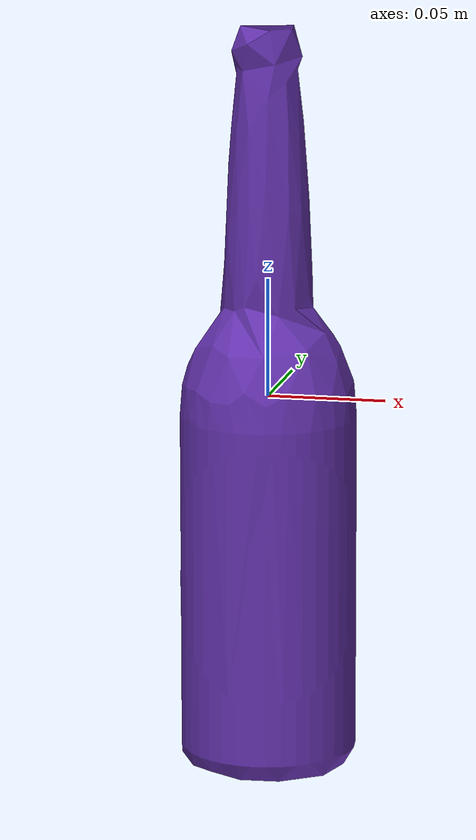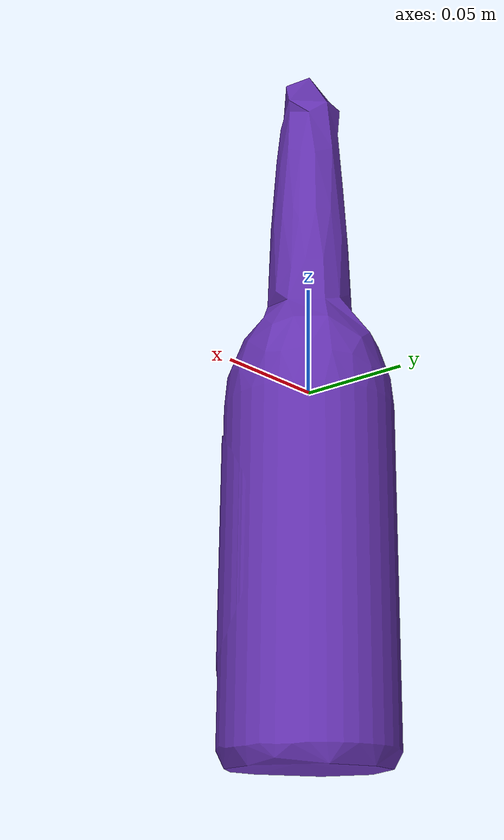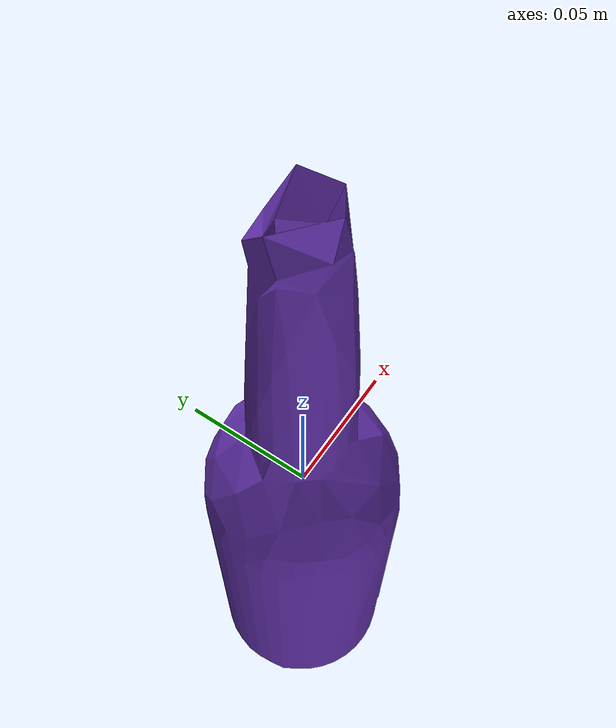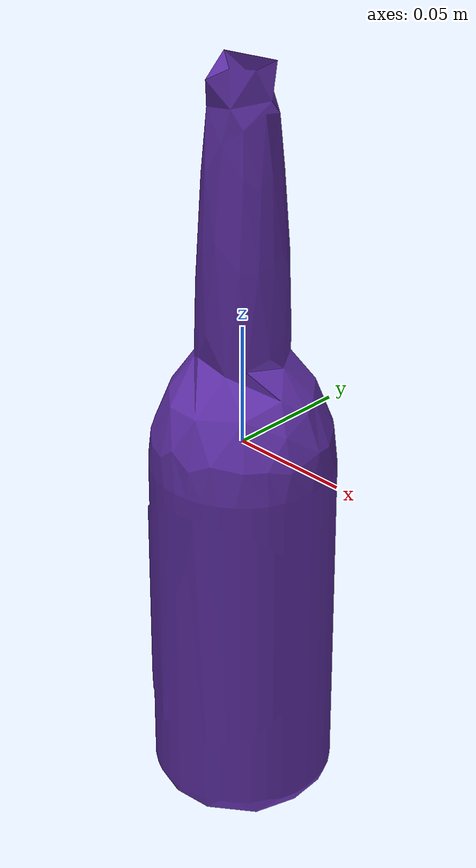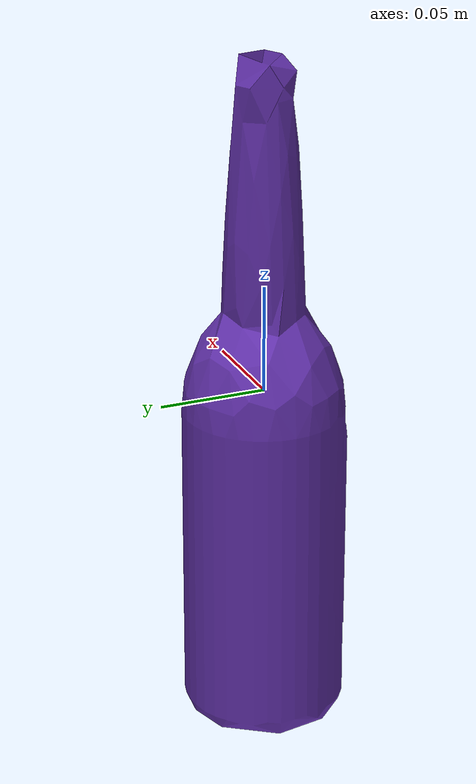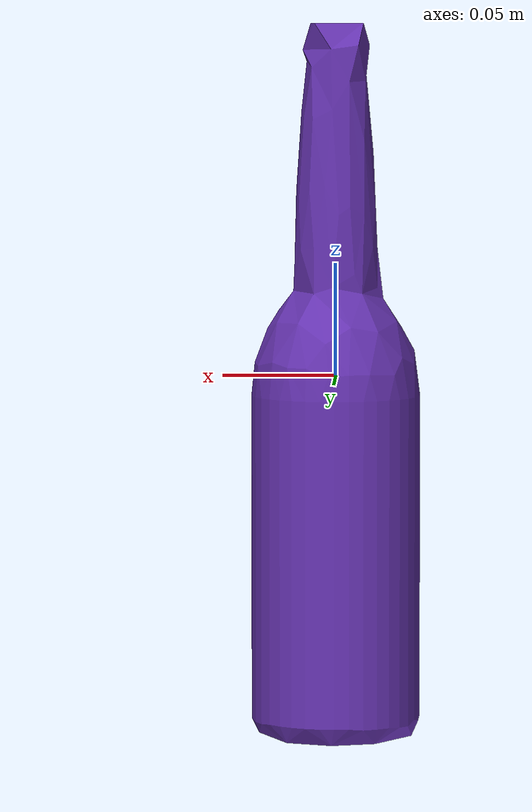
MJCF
<mujoco model="top_watertight_tiny">
  <default>
    <default group="2" type="mesh" contype="0" conaffinity="0">
      <geom group="2" type="mesh" contype="0" conaffinity="0"/>
    </default>
    <default group="3" type="mesh">
      <geom group="3" type="mesh"/>
    </default>
  </default>
  <asset>
    <mesh file="top_watertight_tiny.obj"/>
    <mesh file="top_watertight_tiny_collision_0.obj"/>
    <mesh file="top_watertight_tiny_collision_1.obj"/>
    <mesh file="top_watertight_tiny_collision_2.obj"/>
    <mesh file="top_watertight_tiny_collision_3.obj"/>
    <mesh file="top_watertight_tiny_collision_4.obj"/>
    <mesh file="top_watertight_tiny_collision_5.obj"/>
  </asset>
  <worldbody>
    <body name="top_watertight_tiny">
      <freejoint/>
      <geom mesh="top_watertight_tiny" group="2" type="mesh" rgba="0.4 0.2 0.7 1" contype="0" conaffinity="0"/>
      <geom mesh="top_watertight_tiny_collision_0" rgba="0.16316631135105253 0.7519717605293296 0.44302478663202594 1" group="3" type="mesh"/>
      <geom mesh="top_watertight_tiny_collision_1" rgba="0.7114082897453793 0.9243961697125002 0.22035823397498777 1" group="3" type="mesh"/>
      <geom mesh="top_watertight_tiny_collision_2" rgba="0.11582680826016556 0.2889193135675031 0.6169222122561455 1" group="3" type="mesh"/>
      <geom mesh="top_watertight_tiny_collision_3" rgba="0.6916396881957756 0.36956510960923783 0.38033794249669683 1" group="3" type="mesh"/>
      <geom mesh="top_watertight_tiny_collision_4" rgba="0.48805540833381644 0.49307296461453287 0.03811016277756685 1" group="3" type="mesh"/>
      <geom mesh="top_watertight_tiny_collision_5" rgba="0.7619206745492415 0.44886651635021924 0.348128899686709 1" group="3" type="mesh"/>
    </body>
  </worldbody>
</mujoco>
